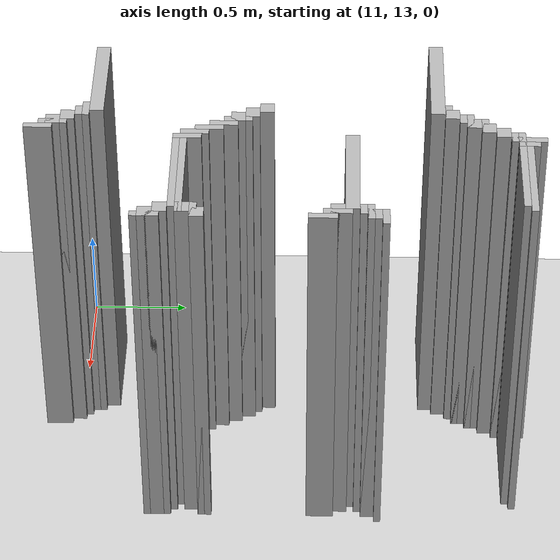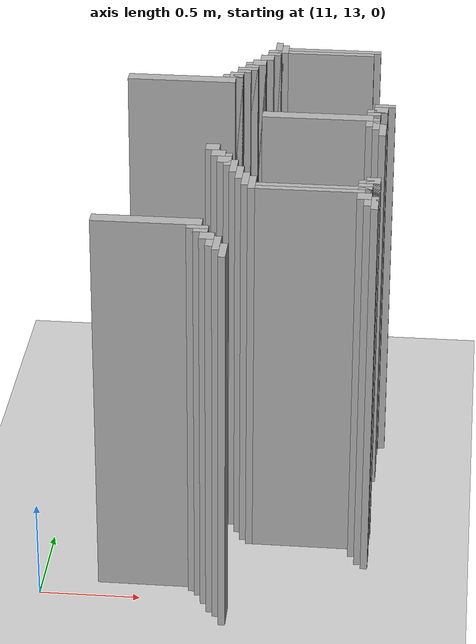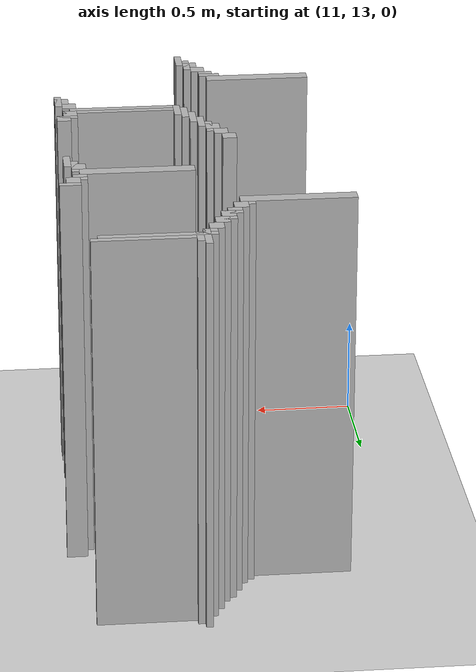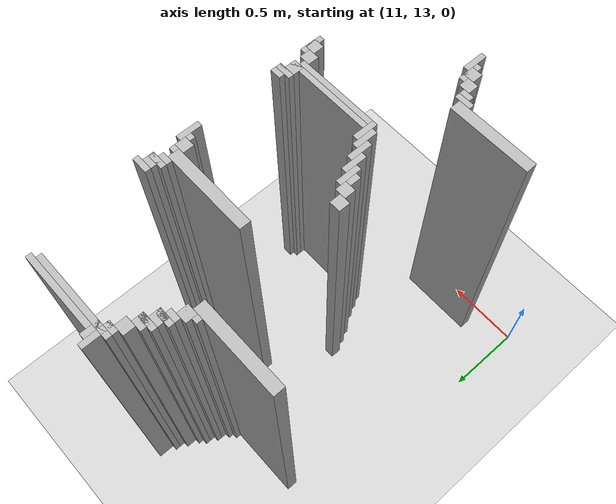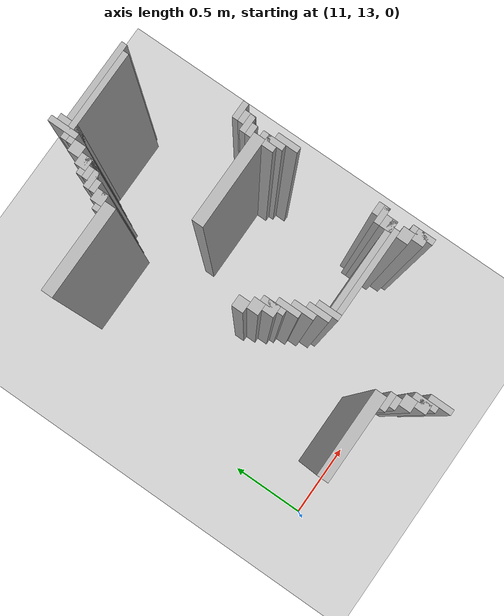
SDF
<sdf version="1.6">
 <world name="slam_world">
  <model name="ground_plane">
   <static>true</static>
   <link name="link">
    <collision name="collision">
     <geometry><plane><normal>0 0 1</normal><size>100 100</size></plane></geometry>
    </collision>
    <visual name="visual">
     <geometry><plane><normal>0 0 1</normal><size>100 100</size></plane></geometry>
     <material>
      <ambient>0.8 0.8 0.8 1</ambient>
      <diffuse>0.8 0.8 0.8 1</diffuse>
      <specular>0.8 0.8 0.8 1</specular>
     </material>
    </visual>
   </link>
  </model>
  <model name="wall_707">
   <static>true</static>
   <pose>11.989559164733178 15.261020881670532 1.0 0 0 0</pose>
   <link name="link">
    <collision name="collision">
     <geometry><box><size>0.03480278422273782 0.17401392111368907 2.0</size></box></geometry>
    </collision>
    <visual name="visual">
     <geometry><box><size>0.03480278422273782 0.17401392111368907 2.0</size></box></geometry>
     <material><ambient>0.5 0.5 0.5 1</ambient><diffuse>0.7 0.7 0.7 1</diffuse></material>
    </visual>
   </link>
  </model>
  <model name="wall_724">
   <static>true</static>
   <pose>12.024361948955915 15.261020881670532 1.0 0 0 0</pose>
   <link name="link">
    <collision name="collision">
     <geometry><box><size>0.03480278422273782 0.10440835266821345 2.0</size></box></geometry>
    </collision>
    <visual name="visual">
     <geometry><box><size>0.03480278422273782 0.10440835266821345 2.0</size></box></geometry>
     <material><ambient>0.5 0.5 0.5 1</ambient><diffuse>0.7 0.7 0.7 1</diffuse></material>
    </visual>
   </link>
  </model>
  <model name="wall_736">
   <static>true</static>
   <pose>12.28538283062645 15.261020881670532 1.0 0 0 0</pose>
   <link name="link">
    <collision name="collision">
     <geometry><box><size>0.4872389791183295 0.03480278422273782 2.0</size></box></geometry>
    </collision>
    <visual name="visual">
     <geometry><box><size>0.4872389791183295 0.03480278422273782 2.0</size></box></geometry>
     <material><ambient>0.5 0.5 0.5 1</ambient><diffuse>0.7 0.7 0.7 1</diffuse></material>
    </visual>
   </link>
  </model>
  <model name="wall_746">
   <static>true</static>
   <pose>12.215777262180975 15.226218097447795 1.0 0 0 0</pose>
   <link name="link">
    <collision name="collision">
     <geometry><box><size>0.5568445475638051 0.03480278422273782 2.0</size></box></geometry>
    </collision>
    <visual name="visual">
     <geometry><box><size>0.5568445475638051 0.03480278422273782 2.0</size></box></geometry>
     <material><ambient>0.5 0.5 0.5 1</ambient><diffuse>0.7 0.7 0.7 1</diffuse></material>
    </visual>
   </link>
  </model>
  <model name="wall_758">
   <static>true</static>
   <pose>11.97215777262181 15.191415313225058 1.0 0 0 0</pose>
   <link name="link">
    <collision name="collision">
     <geometry><box><size>0.06960556844547564 0.03480278422273782 2.0</size></box></geometry>
    </collision>
    <visual name="visual">
     <geometry><box><size>0.06960556844547564 0.03480278422273782 2.0</size></box></geometry>
     <material><ambient>0.5 0.5 0.5 1</ambient><diffuse>0.7 0.7 0.7 1</diffuse></material>
    </visual>
   </link>
  </model>
  <model name="wall_770">
   <static>true</static>
   <pose>11.937354988399072 15.139211136890951 1.0 0 0 0</pose>
   <link name="link">
    <collision name="collision">
     <geometry><box><size>0.06960556844547564 0.06960556844547564 2.0</size></box></geometry>
    </collision>
    <visual name="visual">
     <geometry><box><size>0.06960556844547564 0.06960556844547564 2.0</size></box></geometry>
     <material><ambient>0.5 0.5 0.5 1</ambient><diffuse>0.7 0.7 0.7 1</diffuse></material>
    </visual>
   </link>
  </model>
  <model name="wall_782">
   <static>true</static>
   <pose>11.902552204176333 15.069605568445475 1.0 0 0 0</pose>
   <link name="link">
    <collision name="collision">
     <geometry><box><size>0.06960556844547564 0.06960556844547564 2.0</size></box></geometry>
    </collision>
    <visual name="visual">
     <geometry><box><size>0.06960556844547564 0.06960556844547564 2.0</size></box></geometry>
     <material><ambient>0.5 0.5 0.5 1</ambient><diffuse>0.7 0.7 0.7 1</diffuse></material>
    </visual>
   </link>
  </model>
  <model name="wall_794">
   <static>true</static>
   <pose>11.885150812064964 15.052204176334106 1.0 0 0 0</pose>
   <link name="link">
    <collision name="collision">
     <geometry><box><size>0.10440835266821345 0.03480278422273782 2.0</size></box></geometry>
    </collision>
    <visual name="visual">
     <geometry><box><size>0.10440835266821345 0.03480278422273782 2.0</size></box></geometry>
     <material><ambient>0.5 0.5 0.5 1</ambient><diffuse>0.7 0.7 0.7 1</diffuse></material>
    </visual>
   </link>
  </model>
  <model name="wall_803">
   <static>true</static>
   <pose>11.867749419953595 15.0 1.0 0 0 0</pose>
   <link name="link">
    <collision name="collision">
     <geometry><box><size>0.06960556844547564 0.06960556844547564 2.0</size></box></geometry>
    </collision>
    <visual name="visual">
     <geometry><box><size>0.06960556844547564 0.06960556844547564 2.0</size></box></geometry>
     <material><ambient>0.5 0.5 0.5 1</ambient><diffuse>0.7 0.7 0.7 1</diffuse></material>
    </visual>
   </link>
  </model>
  <model name="wall_815">
   <static>true</static>
   <pose>11.850348027842227 14.982598607888631 1.0 0 0 0</pose>
   <link name="link">
    <collision name="collision">
     <geometry><box><size>0.10440835266821345 0.03480278422273782 2.0</size></box></geometry>
    </collision>
    <visual name="visual">
     <geometry><box><size>0.10440835266821345 0.03480278422273782 2.0</size></box></geometry>
     <material><ambient>0.5 0.5 0.5 1</ambient><diffuse>0.7 0.7 0.7 1</diffuse></material>
    </visual>
   </link>
  </model>
  <model name="wall_823">
   <static>true</static>
   <pose>11.832946635730858 14.947795823665892 1.0 0 0 0</pose>
   <link name="link">
    <collision name="collision">
     <geometry><box><size>0.06960556844547564 0.03480278422273782 2.0</size></box></geometry>
    </collision>
    <visual name="visual">
     <geometry><box><size>0.06960556844547564 0.03480278422273782 2.0</size></box></geometry>
     <material><ambient>0.5 0.5 0.5 1</ambient><diffuse>0.7 0.7 0.7 1</diffuse></material>
    </visual>
   </link>
  </model>
  <model name="wall_835">
   <static>true</static>
   <pose>11.79814385150812 14.895591647331786 1.0 0 0 0</pose>
   <link name="link">
    <collision name="collision">
     <geometry><box><size>0.06960556844547564 0.06960556844547564 2.0</size></box></geometry>
    </collision>
    <visual name="visual">
     <geometry><box><size>0.06960556844547564 0.06960556844547564 2.0</size></box></geometry>
     <material><ambient>0.5 0.5 0.5 1</ambient><diffuse>0.7 0.7 0.7 1</diffuse></material>
    </visual>
   </link>
  </model>
  <model name="wall_840">
   <static>true</static>
   <pose>11.780742459396752 14.878190255220417 1.0 0 0 0</pose>
   <link name="link">
    <collision name="collision">
     <geometry><box><size>0.10440835266821345 0.03480278422273782 2.0</size></box></geometry>
    </collision>
    <visual name="visual">
     <geometry><box><size>0.10440835266821345 0.03480278422273782 2.0</size></box></geometry>
     <material><ambient>0.5 0.5 0.5 1</ambient><diffuse>0.7 0.7 0.7 1</diffuse></material>
    </visual>
   </link>
  </model>
  <model name="wall_854">
   <static>true</static>
   <pose>11.519721577726218 14.825986078886311 1.0 0 0 0</pose>
   <link name="link">
    <collision name="collision">
     <geometry><box><size>0.5568445475638051 0.06960556844547564 2.0</size></box></geometry>
    </collision>
    <visual name="visual">
     <geometry><box><size>0.5568445475638051 0.06960556844547564 2.0</size></box></geometry>
     <material><ambient>0.5 0.5 0.5 1</ambient><diffuse>0.7 0.7 0.7 1</diffuse></material>
    </visual>
   </link>
  </model>
  <model name="wall_933">
   <static>true</static>
   <pose>12.581206496519721 14.564965197215777 1.0 0 0 0</pose>
   <link name="link">
    <collision name="collision">
     <geometry><box><size>0.10440835266821345 0.03480278422273782 2.0</size></box></geometry>
    </collision>
    <visual name="visual">
     <geometry><box><size>0.10440835266821345 0.03480278422273782 2.0</size></box></geometry>
     <material><ambient>0.5 0.5 0.5 1</ambient><diffuse>0.7 0.7 0.7 1</diffuse></material>
    </visual>
   </link>
  </model>
  <model name="wall_941">
   <static>true</static>
   <pose>12.563805104408353 14.512761020881669 1.0 0 0 0</pose>
   <link name="link">
    <collision name="collision">
     <geometry><box><size>0.06960556844547564 0.06960556844547564 2.0</size></box></geometry>
    </collision>
    <visual name="visual">
     <geometry><box><size>0.06960556844547564 0.06960556844547564 2.0</size></box></geometry>
     <material><ambient>0.5 0.5 0.5 1</ambient><diffuse>0.7 0.7 0.7 1</diffuse></material>
    </visual>
   </link>
  </model>
  <model name="wall_952">
   <static>true</static>
   <pose>12.546403712296984 14.4953596287703 1.0 0 0 0</pose>
   <link name="link">
    <collision name="collision">
     <geometry><box><size>0.10440835266821345 0.03480278422273782 2.0</size></box></geometry>
    </collision>
    <visual name="visual">
     <geometry><box><size>0.10440835266821345 0.03480278422273782 2.0</size></box></geometry>
     <material><ambient>0.5 0.5 0.5 1</ambient><diffuse>0.7 0.7 0.7 1</diffuse></material>
    </visual>
   </link>
  </model>
  <model name="wall_960">
   <static>true</static>
   <pose>12.529002320185615 14.460556844547563 1.0 0 0 0</pose>
   <link name="link">
    <collision name="collision">
     <geometry><box><size>0.06960556844547564 0.03480278422273782 2.0</size></box></geometry>
    </collision>
    <visual name="visual">
     <geometry><box><size>0.06960556844547564 0.03480278422273782 2.0</size></box></geometry>
     <material><ambient>0.5 0.5 0.5 1</ambient><diffuse>0.7 0.7 0.7 1</diffuse></material>
    </visual>
   </link>
  </model>
  <model name="wall_974">
   <static>true</static>
   <pose>12.250580046403712 14.408352668213457 1.0 0 0 0</pose>
   <link name="link">
    <collision name="collision">
     <geometry><box><size>0.5568445475638051 0.06960556844547564 2.0</size></box></geometry>
    </collision>
    <visual name="visual">
     <geometry><box><size>0.5568445475638051 0.06960556844547564 2.0</size></box></geometry>
     <material><ambient>0.5 0.5 0.5 1</ambient><diffuse>0.7 0.7 0.7 1</diffuse></material>
    </visual>
   </link>
  </model>
  <model name="wall_988">
   <static>true</static>
   <pose>12.546403712296984 14.33874709976798 1.0 0 0 0</pose>
   <link name="link">
    <collision name="collision">
     <geometry><box><size>0.03480278422273782 0.13921113689095127 2.0</size></box></geometry>
    </collision>
    <visual name="visual">
     <geometry><box><size>0.03480278422273782 0.13921113689095127 2.0</size></box></geometry>
     <material><ambient>0.5 0.5 0.5 1</ambient><diffuse>0.7 0.7 0.7 1</diffuse></material>
    </visual>
   </link>
  </model>
  <model name="wall_1003">
   <static>true</static>
   <pose>12.529002320185615 14.33874709976798 1.0 0 0 0</pose>
   <link name="link">
    <collision name="collision">
     <geometry><box><size>0.06960556844547564 0.06960556844547564 2.0</size></box></geometry>
    </collision>
    <visual name="visual">
     <geometry><box><size>0.06960556844547564 0.06960556844547564 2.0</size></box></geometry>
     <material><ambient>0.5 0.5 0.5 1</ambient><diffuse>0.7 0.7 0.7 1</diffuse></material>
    </visual>
   </link>
  </model>
  <model name="wall_1018">
   <static>true</static>
   <pose>12.581206496519721 14.269141531322505 1.0 0 0 0</pose>
   <link name="link">
    <collision name="collision">
     <geometry><box><size>0.03480278422273782 0.13921113689095127 2.0</size></box></geometry>
    </collision>
    <visual name="visual">
     <geometry><box><size>0.03480278422273782 0.13921113689095127 2.0</size></box></geometry>
     <material><ambient>0.5 0.5 0.5 1</ambient><diffuse>0.7 0.7 0.7 1</diffuse></material>
    </visual>
   </link>
  </model>
  <model name="wall_1116">
   <static>true</static>
   <pose>11.763341067285383 13.990719257540603 1.0 0 0 0</pose>
   <link name="link">
    <collision name="collision">
     <geometry><box><size>0.06960556844547564 0.06960556844547564 2.0</size></box></geometry>
    </collision>
    <visual name="visual">
     <geometry><box><size>0.06960556844547564 0.06960556844547564 2.0</size></box></geometry>
     <material><ambient>0.5 0.5 0.5 1</ambient><diffuse>0.7 0.7 0.7 1</diffuse></material>
    </visual>
   </link>
  </model>
  <model name="wall_1132">
   <static>true</static>
   <pose>11.79814385150812 13.921113689095128 1.0 0 0 0</pose>
   <link name="link">
    <collision name="collision">
     <geometry><box><size>0.06960556844547564 0.06960556844547564 2.0</size></box></geometry>
    </collision>
    <visual name="visual">
     <geometry><box><size>0.06960556844547564 0.06960556844547564 2.0</size></box></geometry>
     <material><ambient>0.5 0.5 0.5 1</ambient><diffuse>0.7 0.7 0.7 1</diffuse></material>
    </visual>
   </link>
  </model>
  <model name="wall_1147">
   <static>true</static>
   <pose>11.850348027842227 13.851508120649651 1.0 0 0 0</pose>
   <link name="link">
    <collision name="collision">
     <geometry><box><size>0.03480278422273782 0.13921113689095127 2.0</size></box></geometry>
    </collision>
    <visual name="visual">
     <geometry><box><size>0.03480278422273782 0.13921113689095127 2.0</size></box></geometry>
     <material><ambient>0.5 0.5 0.5 1</ambient><diffuse>0.7 0.7 0.7 1</diffuse></material>
    </visual>
   </link>
  </model>
  <model name="wall_1162">
   <static>true</static>
   <pose>11.832946635730858 13.851508120649651 1.0 0 0 0</pose>
   <link name="link">
    <collision name="collision">
     <geometry><box><size>0.06960556844547564 0.06960556844547564 2.0</size></box></geometry>
    </collision>
    <visual name="visual">
     <geometry><box><size>0.06960556844547564 0.06960556844547564 2.0</size></box></geometry>
     <material><ambient>0.5 0.5 0.5 1</ambient><diffuse>0.7 0.7 0.7 1</diffuse></material>
    </visual>
   </link>
  </model>
  <model name="wall_1177">
   <static>true</static>
   <pose>11.885150812064964 13.781902552204176 1.0 0 0 0</pose>
   <link name="link">
    <collision name="collision">
     <geometry><box><size>0.03480278422273782 0.13921113689095127 2.0</size></box></geometry>
    </collision>
    <visual name="visual">
     <geometry><box><size>0.03480278422273782 0.13921113689095127 2.0</size></box></geometry>
     <material><ambient>0.5 0.5 0.5 1</ambient><diffuse>0.7 0.7 0.7 1</diffuse></material>
    </visual>
   </link>
  </model>
  <model name="wall_1199">
   <static>true</static>
   <pose>11.919953596287703 13.7122969837587 1.0 0 0 0</pose>
   <link name="link">
    <collision name="collision">
     <geometry><box><size>0.03480278422273782 0.13921113689095127 2.0</size></box></geometry>
    </collision>
    <visual name="visual">
     <geometry><box><size>0.03480278422273782 0.13921113689095127 2.0</size></box></geometry>
     <material><ambient>0.5 0.5 0.5 1</ambient><diffuse>0.7 0.7 0.7 1</diffuse></material>
    </visual>
   </link>
  </model>
  <model name="wall_1214">
   <static>true</static>
   <pose>11.95475638051044 13.642691415313225 1.0 0 0 0</pose>
   <link name="link">
    <collision name="collision">
     <geometry><box><size>0.03480278422273782 0.13921113689095127 2.0</size></box></geometry>
    </collision>
    <visual name="visual">
     <geometry><box><size>0.03480278422273782 0.13921113689095127 2.0</size></box></geometry>
     <material><ambient>0.5 0.5 0.5 1</ambient><diffuse>0.7 0.7 0.7 1</diffuse></material>
    </visual>
   </link>
  </model>
  <model name="wall_1215">
   <static>true</static>
   <pose>12.563805104408353 13.677494199535962 1.0 0 0 0</pose>
   <link name="link">
    <collision name="collision">
     <geometry><box><size>0.06960556844547564 0.06960556844547564 2.0</size></box></geometry>
    </collision>
    <visual name="visual">
     <geometry><box><size>0.06960556844547564 0.06960556844547564 2.0</size></box></geometry>
     <material><ambient>0.5 0.5 0.5 1</ambient><diffuse>0.7 0.7 0.7 1</diffuse></material>
    </visual>
   </link>
  </model>
  <model name="wall_1229">
   <static>true</static>
   <pose>11.989559164733178 13.607888631090487 1.0 0 0 0</pose>
   <link name="link">
    <collision name="collision">
     <geometry><box><size>0.03480278422273782 0.13921113689095127 2.0</size></box></geometry>
    </collision>
    <visual name="visual">
     <geometry><box><size>0.03480278422273782 0.13921113689095127 2.0</size></box></geometry>
     <material><ambient>0.5 0.5 0.5 1</ambient><diffuse>0.7 0.7 0.7 1</diffuse></material>
    </visual>
   </link>
  </model>
  <model name="wall_1230">
   <static>true</static>
   <pose>12.546403712296984 13.660092807424594 1.0 0 0 0</pose>
   <link name="link">
    <collision name="collision">
     <geometry><box><size>0.10440835266821345 0.03480278422273782 2.0</size></box></geometry>
    </collision>
    <visual name="visual">
     <geometry><box><size>0.10440835266821345 0.03480278422273782 2.0</size></box></geometry>
     <material><ambient>0.5 0.5 0.5 1</ambient><diffuse>0.7 0.7 0.7 1</diffuse></material>
    </visual>
   </link>
  </model>
  <model name="wall_1238">
   <static>true</static>
   <pose>12.529002320185615 13.607888631090487 1.0 0 0 0</pose>
   <link name="link">
    <collision name="collision">
     <geometry><box><size>0.06960556844547564 0.06960556844547564 2.0</size></box></geometry>
    </collision>
    <visual name="visual">
     <geometry><box><size>0.06960556844547564 0.06960556844547564 2.0</size></box></geometry>
     <material><ambient>0.5 0.5 0.5 1</ambient><diffuse>0.7 0.7 0.7 1</diffuse></material>
    </visual>
   </link>
  </model>
  <model name="wall_1248">
   <static>true</static>
   <pose>12.28538283062645 13.590487238979117 1.0 0 0 0</pose>
   <link name="link">
    <collision name="collision">
     <geometry><box><size>0.5568445475638051 0.03480278422273782 2.0</size></box></geometry>
    </collision>
    <visual name="visual">
     <geometry><box><size>0.5568445475638051 0.03480278422273782 2.0</size></box></geometry>
     <material><ambient>0.5 0.5 0.5 1</ambient><diffuse>0.7 0.7 0.7 1</diffuse></material>
    </visual>
   </link>
  </model>
  <model name="wall_1257">
   <static>true</static>
   <pose>12.267981438515081 13.55568445475638 1.0 0 0 0</pose>
   <link name="link">
    <collision name="collision">
     <geometry><box><size>0.5220417633410672 0.03480278422273782 2.0</size></box></geometry>
    </collision>
    <visual name="visual">
     <geometry><box><size>0.5220417633410672 0.03480278422273782 2.0</size></box></geometry>
     <material><ambient>0.5 0.5 0.5 1</ambient><diffuse>0.7 0.7 0.7 1</diffuse></material>
    </visual>
   </link>
  </model>
  <model name="wall_1267">
   <static>true</static>
   <pose>12.529002320185615 13.503480278422273 1.0 0 0 0</pose>
   <link name="link">
    <collision name="collision">
     <geometry><box><size>0.06960556844547564 0.06960556844547564 2.0</size></box></geometry>
    </collision>
    <visual name="visual">
     <geometry><box><size>0.06960556844547564 0.06960556844547564 2.0</size></box></geometry>
     <material><ambient>0.5 0.5 0.5 1</ambient><diffuse>0.7 0.7 0.7 1</diffuse></material>
    </visual>
   </link>
  </model>
  <model name="wall_1279">
   <static>true</static>
   <pose>12.581206496519721 13.433874709976797 1.0 0 0 0</pose>
   <link name="link">
    <collision name="collision">
     <geometry><box><size>0.03480278422273782 0.13921113689095127 2.0</size></box></geometry>
    </collision>
    <visual name="visual">
     <geometry><box><size>0.03480278422273782 0.13921113689095127 2.0</size></box></geometry>
     <material><ambient>0.5 0.5 0.5 1</ambient><diffuse>0.7 0.7 0.7 1</diffuse></material>
    </visual>
   </link>
  </model>
  <model name="wall_1291">
   <static>true</static>
   <pose>12.563805104408353 13.433874709976797 1.0 0 0 0</pose>
   <link name="link">
    <collision name="collision">
     <geometry><box><size>0.06960556844547564 0.06960556844547564 2.0</size></box></geometry>
    </collision>
    <visual name="visual">
     <geometry><box><size>0.06960556844547564 0.06960556844547564 2.0</size></box></geometry>
     <material><ambient>0.5 0.5 0.5 1</ambient><diffuse>0.7 0.7 0.7 1</diffuse></material>
    </visual>
   </link>
  </model>
  <model name="wall_1363">
   <static>true</static>
   <pose>11.537122969837586 13.155452436194896 1.0 0 0 0</pose>
   <link name="link">
    <collision name="collision">
     <geometry><box><size>0.5220417633410672 0.06960556844547564 2.0</size></box></geometry>
    </collision>
    <visual name="visual">
     <geometry><box><size>0.5220417633410672 0.06960556844547564 2.0</size></box></geometry>
     <material><ambient>0.5 0.5 0.5 1</ambient><diffuse>0.7 0.7 0.7 1</diffuse></material>
    </visual>
   </link>
  </model>
  <model name="wall_1383">
   <static>true</static>
   <pose>11.780742459396752 13.103248259860788 1.0 0 0 0</pose>
   <link name="link">
    <collision name="collision">
     <geometry><box><size>0.10440835266821345 0.03480278422273782 2.0</size></box></geometry>
    </collision>
    <visual name="visual">
     <geometry><box><size>0.10440835266821345 0.03480278422273782 2.0</size></box></geometry>
     <material><ambient>0.5 0.5 0.5 1</ambient><diffuse>0.7 0.7 0.7 1</diffuse></material>
    </visual>
   </link>
  </model>
  <model name="wall_1395">
   <static>true</static>
   <pose>11.79814385150812 13.06844547563805 1.0 0 0 0</pose>
   <link name="link">
    <collision name="collision">
     <geometry><box><size>0.06960556844547564 0.03480278422273782 2.0</size></box></geometry>
    </collision>
    <visual name="visual">
     <geometry><box><size>0.06960556844547564 0.03480278422273782 2.0</size></box></geometry>
     <material><ambient>0.5 0.5 0.5 1</ambient><diffuse>0.7 0.7 0.7 1</diffuse></material>
    </visual>
   </link>
  </model>
  <model name="wall_1410">
   <static>true</static>
   <pose>11.832946635730858 13.016241299303944 1.0 0 0 0</pose>
   <link name="link">
    <collision name="collision">
     <geometry><box><size>0.06960556844547564 0.06960556844547564 2.0</size></box></geometry>
    </collision>
    <visual name="visual">
     <geometry><box><size>0.06960556844547564 0.06960556844547564 2.0</size></box></geometry>
     <material><ambient>0.5 0.5 0.5 1</ambient><diffuse>0.7 0.7 0.7 1</diffuse></material>
    </visual>
   </link>
  </model>
  <model name="wall_1425">
   <static>true</static>
   <pose>11.885150812064964 12.946635730858468 1.0 0 0 0</pose>
   <link name="link">
    <collision name="collision">
     <geometry><box><size>0.03480278422273782 0.13921113689095127 2.0</size></box></geometry>
    </collision>
    <visual name="visual">
     <geometry><box><size>0.03480278422273782 0.13921113689095127 2.0</size></box></geometry>
     <material><ambient>0.5 0.5 0.5 1</ambient><diffuse>0.7 0.7 0.7 1</diffuse></material>
    </visual>
   </link>
  </model>
  <model name="wall_1440">
   <static>true</static>
   <pose>11.867749419953595 12.946635730858468 1.0 0 0 0</pose>
   <link name="link">
    <collision name="collision">
     <geometry><box><size>0.06960556844547564 0.06960556844547564 2.0</size></box></geometry>
    </collision>
    <visual name="visual">
     <geometry><box><size>0.06960556844547564 0.06960556844547564 2.0</size></box></geometry>
     <material><ambient>0.5 0.5 0.5 1</ambient><diffuse>0.7 0.7 0.7 1</diffuse></material>
    </visual>
   </link>
  </model>
  <model name="wall_1455">
   <static>true</static>
   <pose>11.919953596287703 12.877030162412993 1.0 0 0 0</pose>
   <link name="link">
    <collision name="collision">
     <geometry><box><size>0.03480278422273782 0.13921113689095127 2.0</size></box></geometry>
    </collision>
    <visual name="visual">
     <geometry><box><size>0.03480278422273782 0.13921113689095127 2.0</size></box></geometry>
     <material><ambient>0.5 0.5 0.5 1</ambient><diffuse>0.7 0.7 0.7 1</diffuse></material>
    </visual>
   </link>
  </model>
 </world>
</sdf>
